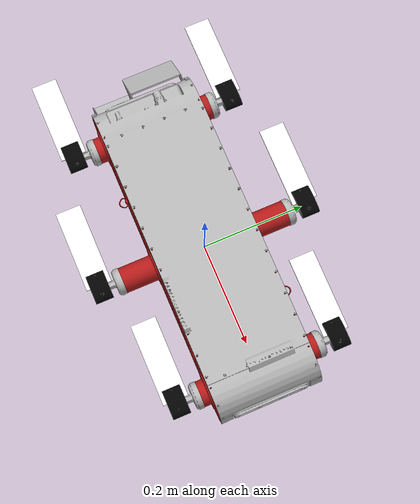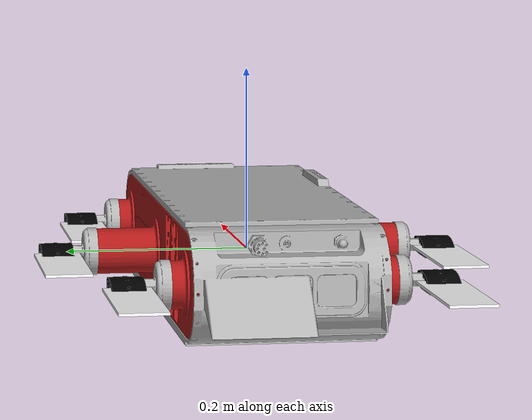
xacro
<?xml version="1.0"?>

<robot xmlns:xacro="http://www.ros.org/wiki/xacro" name="aqua">
    <xacro:include filename="$(find aqua_description)/urdf/materials.urdf.xacro" />

    <!-- ========= BEGIN CONSTANT DEFINITIONS =========== -->

    <xacro:property name="M_PI" value="3.1415926535897931" />

    <xacro:property name="shell_size_x" value="0.64" />
    <xacro:property name="shell_size_y" value="0.21" />
    <xacro:property name="shell_size_z" value="0.12" />

    <xacro:property name="leg_size_x" value="0.16" />
    <xacro:property name="leg_size_y" value="0.05" />
    <xacro:property name="leg_size_z" value="0.003" />

    <xacro:property name="hip_radius" value="0.029" />
    <xacro:property name="hip_length" value="0.032" />
    <xacro:property name="mid_hip_length" value="0.082"/>

    <xacro:property name="shoulder_size_x" value="0.06" />
    <xacro:property name="shoulder_size_y" value="0.035" />
    <xacro:property name="shoulder_size_z" value="0.02" />

    <xacro:property name="hip_mass" value="0.25"/>
    <xacro:property name="mid_hip_mass" value="0.5"/>
    <xacro:property name="shell_mass" value="14.4"/> <!-- total is 16.4 -->
    <xacro:property name="leg_mass" value="0.065"/>
    <xacro:property name="shoulder_mass" value="0.025"/>
    <xacro:property name="front_ballast_density" value="7140.0"/>
    <xacro:property name="ballast_plate_density" value="8050.0"/>

    <!-- ========= BEGIN MACRO DEFINITIONS =========== -->
    <!-- LEGS -->
    <xacro:macro name="leg" params="name">
        <link name="${name}_leg">
            <visual name="leg_visual">
                <origin xyz="0 0 0" rpy="0 0 0" />
                <geometry name="leg_visual_geom">
                    <box size="${leg_size_x} ${leg_size_y} ${leg_size_z}" />
                </geometry>
                <material name="White" />
            </visual>
            <collision>
                <origin xyz="0 0 0" rpy="0 0 0" />
                <geometry>
                    <box size="${leg_size_x} ${leg_size_y} ${leg_size_z}" />
                </geometry>
            </collision>
            <inertial>
                <origin xyz="0 0 0" rpy="0 0 0" />
                <mass value="${leg_mass}"/>
                <inertia ixx="${leg_mass*(leg_size_y*leg_size_y + leg_size_z*leg_size_z)/12}" ixy="0.00" ixz="0.00" iyy="${leg_mass*(leg_size_x*leg_size_x + leg_size_z*leg_size_z)/12}" iyz="0.00" izz="${leg_mass*(leg_size_x*leg_size_x + leg_size_y*leg_size_y)/12}"/>
            </inertial>
        </link>
    </xacro:macro>

    <xacro:macro name="shoulder" params="name">
        <link name="${name}_shoulder">
            <visual name="shoulder_visual">
                <origin xyz="0 0 0" rpy="0 0 0" />
                <geometry name="leg_joint_visual_geom">
                    <mesh filename="package://aqua_description/meshes/leg_joint.STL" scale="1.0 1.0 1.0" />
                </geometry>
                <material name="Black" />
            </visual>
            <collision>
                <origin xyz="-0.007 0 0" rpy="0 0 0" />
                <geometry>
                    <box size="${shoulder_size_x} ${shoulder_size_y} ${shoulder_size_z}" />
                </geometry>
            </collision>
            <inertial>
                <origin xyz="-0.007 0 0" rpy="0 0 0" />
                <mass value="${shoulder_mass}"/>
                <inertia ixx="${shoulder_mass*(shoulder_size_y*shoulder_size_y + shoulder_size_z*shoulder_size_z)/12}" ixy="0.00" ixz="0.00" iyy="${shoulder_mass*(shoulder_size_x*shoulder_size_x + shoulder_size_z*shoulder_size_z)/12}" iyz="0.00" izz="${shoulder_mass*(shoulder_size_x*shoulder_size_x + leg_size_y*leg_size_y)/12}"/>
            </inertial>
        </link>
    </xacro:macro>

    <!-- HIPS -->
    <xacro:macro name="hip" params="name xyz rpy">
        <link name ="${name}_hip">
            <collision>
                <origin xyz="${xyz}" rpy="${rpy}" />
                <geometry>
                    <cylinder length="${hip_length}" radius="${hip_radius}"/>
                </geometry>
            </collision>
            <inertial>
                <origin xyz="${xyz}" rpy="${rpy}" />
                <mass value="${hip_mass}"/>
                <inertia ixx="${hip_mass*(3*hip_radius*hip_radius+hip_length*hip_length)/12}" ixy="0.00" ixz="0.00" iyy="${hip_mass*(3*hip_radius*hip_radius+hip_length*hip_length)/12}" iyz="0.00" izz="${hip_mass*(hip_radius*hip_radius)/2}"/>
            </inertial>
        </link>
    </xacro:macro>

    <xacro:macro name="mid_hip" params="name xyz rpy">
        <link name ="${name}_hip">
            <collision>
                <origin xyz="${xyz}" rpy="${rpy}" />
                <geometry>
                    <cylinder length="${mid_hip_length}" radius="${hip_radius}"/>
                </geometry>
            </collision>
            <inertial>
                <origin xyz="${xyz}" rpy="${rpy}" />
                <mass value="${mid_hip_mass}"/>
                <inertia ixx="${mid_hip_mass*(3*hip_radius*hip_radius+mid_hip_length*mid_hip_length)/12}" ixy="0.00" ixz="0.00" iyy="${mid_hip_mass*(3*hip_radius*hip_radius+mid_hip_length*mid_hip_length)/12}" iyz="0.00" izz="${mid_hip_mass*(hip_radius*hip_radius)/2}"/>
            </inertial>
        </link>
    </xacro:macro>

    <!-- ballasting -->
    <xacro:macro name="rectangular_ballast_weight" params="name xyz rpy density length width height">
        <link name="${name}_ballast">
            <visual name="ballast_visual">
                <origin xyz="${xyz}" rpy="${rpy}" />
                <geometry name="left_front_leg_visual_geom">
                    <box size="${length} ${width} ${height}" />
                </geometry>
                <material name="Gray" />
            </visual>
            <inertial>
                <origin xyz="${xyz}" rpy="${rpy}" />
                <mass value="${density*length*width*height}"/>
                <inertia ixx="${(density*length*width*height)*(width*width + height*height)/12}" ixy="0.00" ixz="0.00" iyy="${(density*length*width*height)*(length*length + height*height)/12}" iyz="0.00" izz="${(density*length*width*height)*(length*length + width*width)/12}"/>
            </inertial>
        </link>
        <joint name="base_joint_${name}" type="revolute">
            <limit upper="0.0" lower="0.0" effort="0.0" velocity="0.0"/>
            <origin xyz="0 0 0" rpy="0 0 0" />
            <axis xyz="0 1 0" />
            <parent link="aqua_base"/>
            <child link="${name}_ballast"/>
        </joint>
    </xacro:macro>

    <!-- LEG JOINTS -->
    <xacro:macro name="hip_joint" params="name xyz rpy axis">
        <joint name="${name}_hip_joint" type="fixed">
      <origin xyz="${xyz}" rpy="${rpy}" />
      <axis xyz="${axis}" />
      <parent link="aqua_side_plates"/>
      <child link="${name}_hip"/>
  </joint>
  </xacro:macro>

  <xacro:macro name="leg_joint" params="name xyz rpy axis">
      <joint name="${name}_leg_joint" type="continuous">
          <origin xyz="${xyz}" rpy="${rpy}" />
          <dynamics damping="0.1"/>
          <axis xyz="${axis}" />
          <parent link="${name}_hip"/>
          <child link="${name}_shoulder"/>
      </joint>
  </xacro:macro>

  <xacro:macro name="shoulder_joint" params="name">
      <joint name="${name}_shoulder_joint" type="revolute">
          <limit upper="0.0" lower="0.0" effort="0.0" velocity="0.0"/>
          <dynamics damping="1000.0"/>
          <origin xyz="-${0.008 + leg_size_x/2} 0 -${leg_size_z/2}" rpy="0 0 0" />
          <axis xyz="0 1 0" />
          <parent link="${name}_shoulder"/>
          <child link="${name}_leg"/>
      </joint>
  </xacro:macro>

  <!-- GAZEBO MACROS -->
  <xacro:macro name="leg_gazebo" params="name">
      <gazebo reference="${name}_leg">
          <material>Gazebo/Red</material>
          <selfCollide>false</selfCollide>
          <dampingFactor>0.0001</dampingFactor>
      </gazebo>
      <gazebo reference="${name}_leg_joint">
          <implicitSpringDamper>true</implicitSpringDamper>
      </gazebo>
  </xacro:macro>

  <xacro:macro name="shoulder_gazebo" params="name">
      <gazebo reference="${name}_shoulder">
          <material>Gazebo/Black</material>
          <selfCollide>false</selfCollide>
          <dampingFactor>0.0001</dampingFactor>
      </gazebo>
      <gazebo reference="${name}_shoulder_joint">
          <implicitSpringDamper>true</implicitSpringDamper>
      </gazebo>
  </xacro:macro>

  <!-- ========= BEGIN LINK DEFINITIONS =========== -->

  <link name="aqua_base">
  </link>

  <!-- The parent link is the robots shell, silver and red in the same position -->
  <link name="aqua_side_plates">
      <visual name="side_plates_visual">
          <origin xyz="0 0 0" rpy="0 0 0" />
          <geometry name="side_plates_geom">
              <mesh filename="package://aqua_description/meshes/aqua_red_m_low_res.STL" scale="1.0 1.0 1.0" />
          </geometry>
          <material name="Red"/>
      </visual>
  </link>

  <link name="aqua_shell">
      <visual name="shell_visual">
          <origin xyz="0 0 0" rpy="0 0 0" />
          <geometry name="shell_visual_geom">
              <mesh filename="package://aqua_description/meshes/aqua_silver_m_low_res.STL" scale="1.0 1.0 1.0" />
          </geometry>
          <material name="Grey" />
      </visual>
      <collision>
          <geometry>
              <box size="${shell_size_x} ${shell_size_y} ${shell_size_z}"/>
          </geometry>
      </collision>
      <inertial>
          <origin xyz="0 0 0" rpy="0 0 0" />
          <!-- the mass value came from the adept mobile robots datasheet -->
          <mass value="${shell_mass}"/>
          <!-- computed with meshlab -->
          <inertia ixx="${shell_mass*0.000014}" ixy="${shell_mass*0.000002}" ixz="0.00" iyy="${shell_mass*0.000073}" iyz="0.00" izz="${shell_mass*0.000080}"/>
      </inertial>
  </link>

  <!-- CAMERA LINKS -->

  <link name="camera_front_left">
      <visual name="camera_front_left_visual">
          <origin xyz="0 0 0" rpy="0 0 0" />
          <geometry name="camera_front_left_visual_geom">
              <box size="0 0 0" />
          </geometry>
          <material name="White" />
      </visual>
  </link>

  <link name="camera_front_right">
      <visual name="camera_front_right_visual">
          <origin xyz="0 0 0" rpy="0 0 0" />
          <geometry name="camera_front_right_visual_geom">
              <box size="0 0 0" />
          </geometry>
          <material name="White" />
      </visual>
  </link>

  <link name="camera_back_down">
      <visual name="camera_back_down_visual">
          <origin xyz="0 0 0" rpy="0 0 0" />
          <geometry name="camera_back_down_visual_geom">
              <box size="0 0 0" />
          </geometry>
          <material name="White" />
      </visual>
  </link>
  <!-- BALLASTING LINKS -->
  <xacro:rectangular_ballast_weight name="front_ballast_weight"
                                    density="${front_ballast_density}"
                                    xyz="${shell_size_x*0.375} ${0} ${-shell_size_z/2.0}"
                                    rpy="0 0 ${M_PI/2}"
                                    length="0.10"
                                    width="0.025"
                                    height="0.0057"/>

  <!-- DEPTH SENSOR LINK -->
        <!-- these are dummy values, otherwise gazebo will ignore this link -->

  <!-- FRONT LEFT LINKS -->

  <xacro:leg name="left_front"/>

  <xacro:shoulder name="left_front"/>

  <xacro:hip name="left_front" xyz="0 ${hip_length/2} 0" rpy="${M_PI/2} 0 0" />

  <!-- MID LEFT LINKS -->

  <xacro:leg name="left_mid"/>

  <xacro:shoulder name="left_mid"/>

  <xacro:mid_hip name="left_mid" xyz="0 ${mid_hip_length/2} 0" rpy="${M_PI/2} 0 0" />

  <!-- REAR LEFT LINKS -->

  <xacro:leg name="left_rear"/>

  <xacro:shoulder name="left_rear"/>

  <xacro:hip name ="left_rear" xyz="0 ${hip_length/2} 0" rpy="${M_PI/2} 0 0" />

  <!-- FRONT RIGHT LINKS -->

  <xacro:leg name="right_front"/>

  <xacro:shoulder name="right_front"/>

  <xacro:hip name ="right_front" xyz="0 -${hip_length/2} 0" rpy="${M_PI/2} 0 0" />

  <!-- MID RIGHT LINKS -->

  <xacro:leg name="right_mid"/>

  <xacro:shoulder name="right_mid"/>

  <xacro:mid_hip name="right_mid" xyz="0 -${mid_hip_length/2} 0" rpy="${M_PI/2} 0 0" />

  <!-- REAR RIGHT LINKS -->

  <xacro:leg name="right_rear"/>

  <xacro:shoulder name="right_rear"/>

  <xacro:hip name ="right_rear" xyz="0 -${hip_length/2} 0" rpy="${M_PI/2} 0 0" />

  <!-- ========= BEGIN JOINT DEFINITIONS =========== -->

  <!-- BASE JOINT -->

  <joint name="base_joint_sides" type="fixed">
      <origin xyz="0 0 0" rpy="0 0 0" />
      <axis xyz="0 1 0" />
      <parent link="aqua_base"/>
      <child link="aqua_side_plates"/>
  </joint>

  <joint name="base_joint_shell" type="fixed">
      <origin xyz="0 0 0" rpy="0 0 0" />
      <axis xyz="0 1 0" />
      <parent link="aqua_side_plates"/>
      <child link="aqua_shell"/>
  </joint>

  <!-- CAMERA JOINTS -->

  <joint name="front_left_camera_joint" type="fixed">
      <origin xyz="${shell_size_x/2} ${shell_size_y/3} 0" rpy="${M_PI/2} ${M_PI} ${M_PI/2}" />
      <axis xyz="0 1 0" />
      <parent link="aqua_shell"/>
      <child link="camera_front_left"/>
  </joint>

  <joint name="front_right_camera_joint" type="fixed">
      <origin xyz="${shell_size_x/2} -${shell_size_y/3} 0" rpy="${M_PI/2} ${M_PI} ${M_PI/2}" />
      <axis xyz="0 1 0" />
      <parent link="aqua_shell"/>
      <child link="camera_front_right"/>
  </joint>

  <joint name="back_down_camera_joint" type="fixed">
      <origin xyz="-${shell_size_x/2} 0 -${shell_size_z/2}" rpy="-${M_PI/2} ${M_PI/2} -${M_PI/2}" />
      <axis xyz="0 1 0" />
      <parent link="aqua_shell"/>
      <child link="camera_back_down"/>
  </joint>

  <!-- DEPTH SENSOR JOINT -->

  <!-- making this joint revolute instead of fixed is a hack, so that is appears in the gazebo simulation -->

  <!-- FRONT LEFT JOINTS -->
  <xacro:hip_joint name="left_front" xyz="${shell_size_x/2 - 0.1027*shell_size_x} ${shell_size_y/2} 0" rpy="0 0 0" axis="0 1 0"/>

  <xacro:leg_joint name="left_front" xyz="0 ${leg_size_y/2 + hip_length} 0" rpy="0 0 0" axis="0 -1 0" />

  <xacro:shoulder_joint name="left_front" />

  <!-- MID LEFT JOINTS -->
  <xacro:hip_joint name="left_mid" xyz="0 ${shell_size_y/2} 0" rpy="0 0 0" axis="0 1 0" />

  <xacro:leg_joint name="left_mid" xyz="0 ${leg_size_y/2 + mid_hip_length} 0" rpy="0 0 0" axis="0 -1 0"/>

  <xacro:shoulder_joint name="left_mid" />

  <!-- REAR LEFT JOINTS -->
  <xacro:hip_joint name="left_rear" xyz="-${shell_size_x/2 - 0.1027*shell_size_x} ${shell_size_y/2} 0" rpy="0 0 0" axis="0 1 0" />

  <xacro:leg_joint name="left_rear" xyz="0 ${leg_size_y/2 + hip_length} 0" rpy="0 0 0" axis="0 -1 0"/>

  <xacro:shoulder_joint name="left_rear" />

  <!-- FRONT RIGHT JOINTS -->
  <xacro:hip_joint name="right_front" xyz="${shell_size_x/2 - 0.1026*shell_size_x} -${shell_size_y/2} 0" rpy="0 0 0" axis="0 1 0"/>

  <xacro:leg_joint name="right_front" xyz="0 -${leg_size_y/2 + hip_length} 0" rpy="0 0 0" axis="0 -1 0" />

  <xacro:shoulder_joint name="right_front" />

  <!-- MID RIGHT JOINTS -->
  <xacro:hip_joint name="right_mid" xyz="0 -${shell_size_y/2} 0" rpy="0 0 0" axis="0 1 0" />

  <xacro:leg_joint name="right_mid" xyz="0 -${leg_size_y/2 + mid_hip_length} 0" rpy="0 0 0" axis="0 -1 0"/>

  <xacro:shoulder_joint name="right_mid" />

  <!-- REAR RIGHT JOINTS -->
  <xacro:hip_joint name="right_rear" xyz="-${shell_size_x/2 - 0.1027*shell_size_x} -${shell_size_y/2} 0" rpy="0 0 0" axis="0 1 0" />

  <xacro:leg_joint name="right_rear" xyz="0 -${leg_size_y/2 + hip_length} 0" rpy="0 0 0" axis="0 -1 0"/>

  <xacro:shoulder_joint name="right_rear" />

  <!-- GAZEBO SPECIFIC SETTINGS -->
  <!-- gazebo materials -->
  <gazebo reference="aqua_side_plates">
      <material>Gazebo/Red</material>
      <selfCollide>false</selfCollide>
  </gazebo>
  <gazebo reference="aqua_shell">
      <material>Gazebo/Grey</material>
      <selfCollide>false</selfCollide>
  </gazebo>
  <gazebo reference="aqua_base">
      <selfCollide>false</selfCollide>
      <dampingFactor>0.000001</dampingFactor>
  </gazebo>
  <xacro:leg_gazebo name="left_front" />
  <xacro:shoulder_gazebo name="left_front" />
  <xacro:leg_gazebo name="left_mid" />
  <xacro:shoulder_gazebo name="left_mid" />
  <xacro:leg_gazebo name="left_rear" />
  <xacro:shoulder_gazebo name="left_rear" />
  <xacro:leg_gazebo name="right_front" />
  <xacro:shoulder_gazebo name="right_front" />
  <xacro:leg_gazebo name="right_mid" />
  <xacro:shoulder_gazebo name="right_mid" />
  <xacro:leg_gazebo name="right_rear" />
  <xacro:shoulder_gazebo name="right_rear" />

</robot>

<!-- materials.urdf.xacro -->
<robot xmlns:xacro="http://www.ros.org/wiki/xacro" name="aqua">

  <material name="Blue">
    <color rgba="0.0 0.0 0.8 1.0"/>
  </material>

  <material name="Green">
    <color rgba="0.0 0.8 0.0 1.0"/>
  </material>

  <material name="Grey">
    <color rgba="0.7 0.7 0.7 1.0"/>
  </material>

  <material name="Grey2">
    <color rgba="0.9 0.9 0.9 1.0"/>
  </material>

  <material name="DarkGrey">
    <color rgba="0.3 0.3 0.3 1.0"/>
  </material>

  <material name="Red">
    <color rgba="0.7 0.1 0.1 1.0"/>
  </material>

  <material name="Yellow">
    <color rgba="0.9 0.75 0.1 1.0"/>
  </material>

  <material name="White">
    <color rgba="1.0 1.0 1.0 1.0"/>
  </material>

  <material name="Black">
    <color rgba="0.0 0.0 0.0 1.0"/>
  </material>

</robot>
